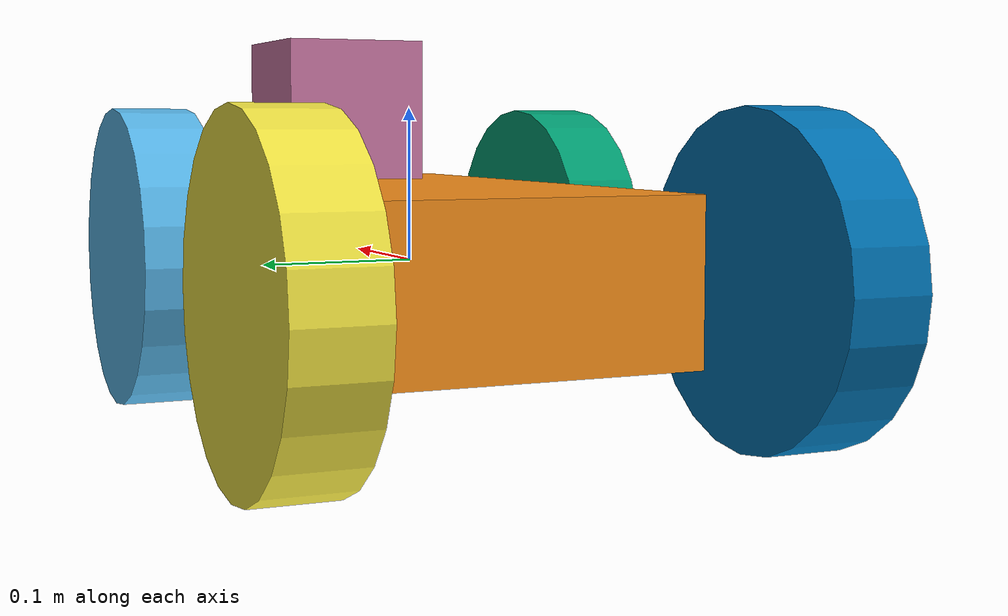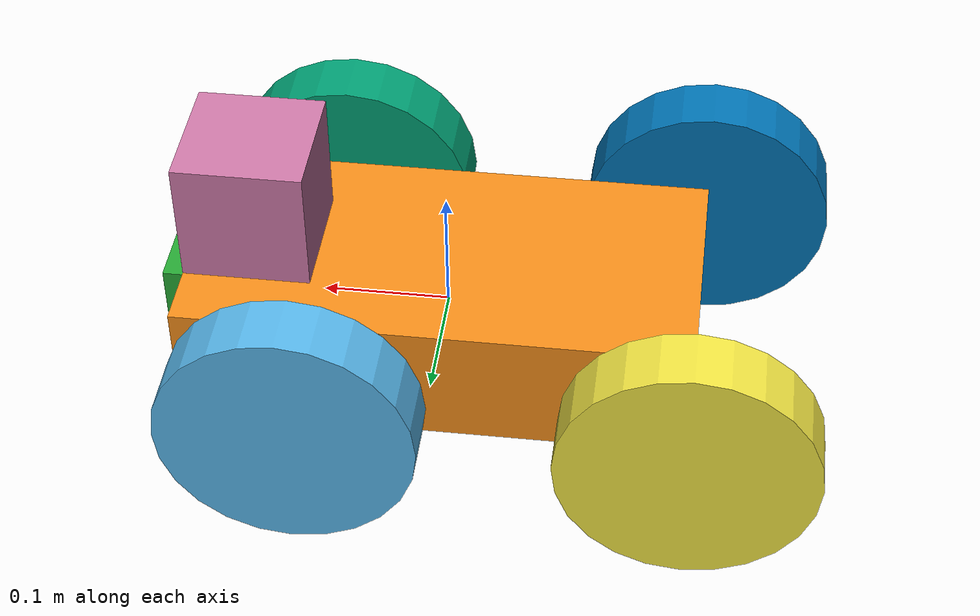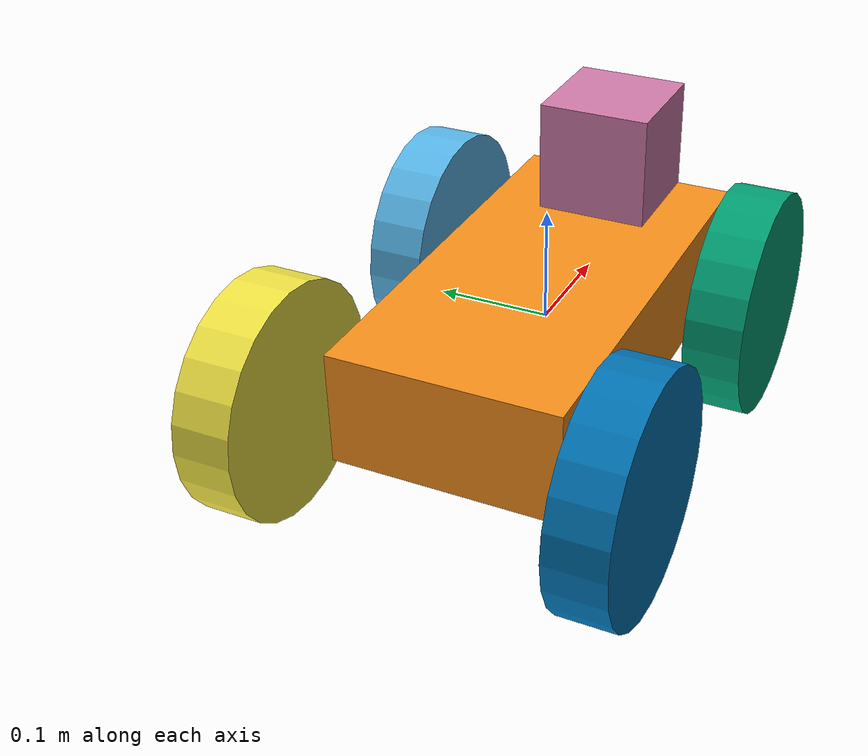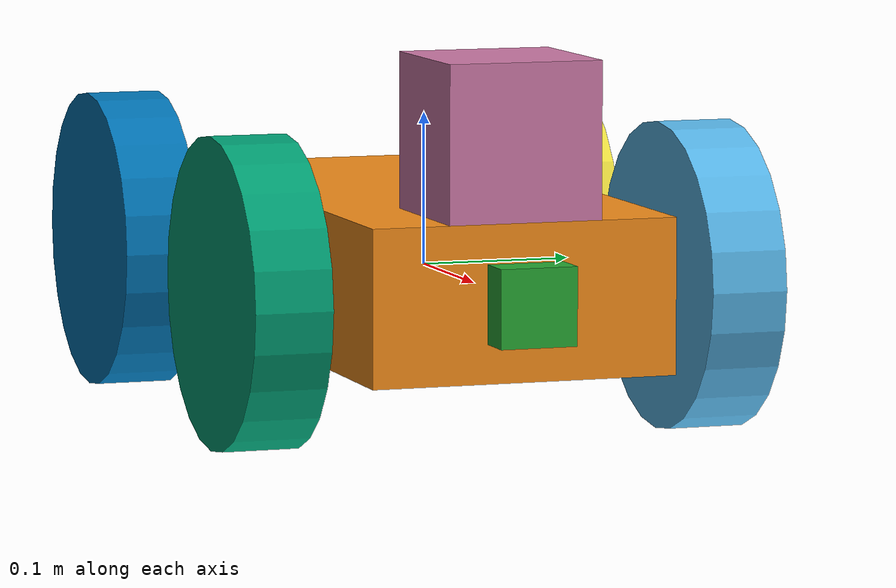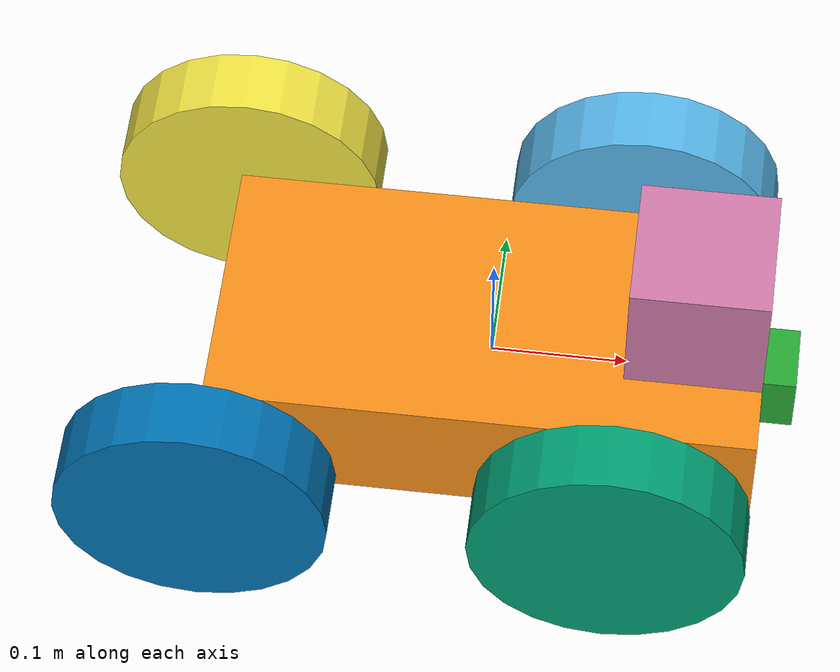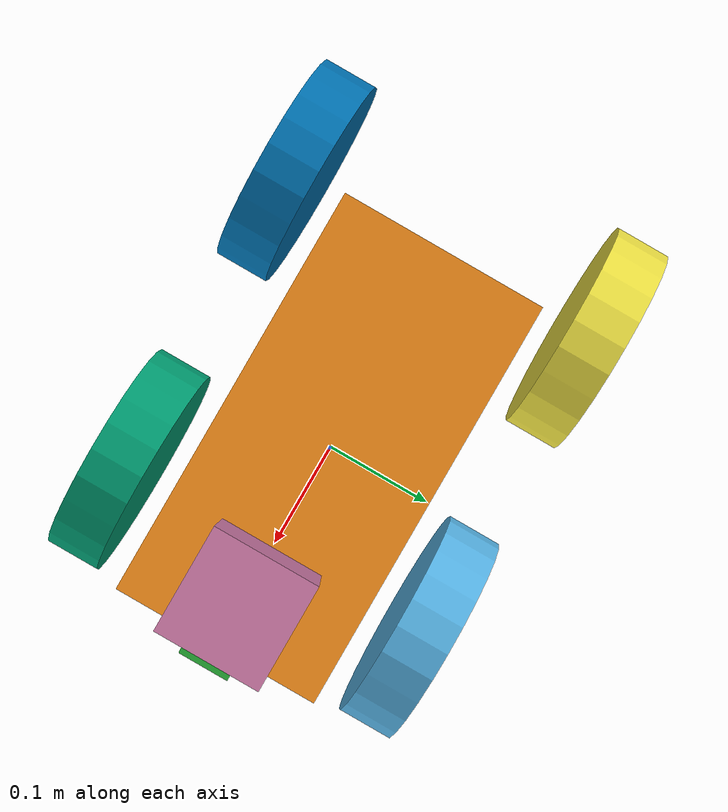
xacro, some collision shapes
<?xml version='1.0'?>

<robot name="myrobot" xmlns:xacro="http://www.ros.org/wiki/xacro">

  <xacro:property name="cameraSize" value="0.05"/>
  <xacro:property name="cameraMass" value="0.1"/>

  <xacro:include filename="$(find mybot_description)/urdf/mybot.gazebo" />
  <xacro:include filename="$(find mybot_description)/urdf/materials.xacro" />
  <xacro:include filename="$(find mybot_description)/urdf/macros.xacro" />

  <link name='chassis'>
    <pose>0 0 0.1 0 0 0</pose>

    <inertial>
      <mass value="10.0"/>
      <origin xyz="0.0 0 0.1" rpy=" 0 0 0"/>
      <inertia
          ixx="0.5" ixy="0" ixz="0"
          iyy="1.0" iyz="0"
          izz="0.1"
      />
    </inertial>

    <collision name='collision'>
      <geometry>
        <box size=".4 .2 .1"/>
      </geometry>
    </collision>

    <visual name='chassis_visual'>
      <origin xyz="0 0 0" rpy=" 0 0 0"/>
      <geometry>
        <box size=".4 .2 .1"/>
      </geometry>
    </visual>

  </link>

  <link name="left_wheel">
    <!--origin xyz="0.1 0.13 0.1" rpy="0 1.5707 1.5707"/-->
    <collision name="collision">
      <origin xyz="0 0 0" rpy="0 1.5707 1.5707"/>
      <geometry>
        <cylinder radius="0.1" length="0.05"/>
      </geometry>
    </collision>
    <visual name="left_wheel_visual">
      <origin xyz="0 0 0" rpy="0 1.5707 1.5707"/>
      <geometry>
        <cylinder radius="0.1" length="0.05"/>
      </geometry>
    </visual>
    <inertial>
      <origin xyz="0 0 0" rpy="0 1.5707 1.5707"/>
      <mass value="5"/>
      <cylinder_inertia m="5" r="0.1" h="0.05"/>
      <inertia
        ixx="1.0" ixy="0.0" ixz="0.0"
        iyy="1.0" iyz="0.0"
        izz="1.0"/>
    </inertial>
  </link>

  <link name="right_wheel">
    <!--origin xyz="0.1 -0.13 0.1" rpy="0 1.5707 1.5707"/-->
    <collision name="collision">
      <origin xyz="0 0 0" rpy="0 1.5707 1.5707"/>
      <geometry>
        <cylinder radius="0.1" length="0.05"/>
      </geometry>
    </collision>
    <visual name="right_wheel_visual">
      <origin xyz="0 0 0" rpy="0 1.5707 1.5707"/>
      <geometry>
        <cylinder radius="0.1" length="0.05"/>
      </geometry>
    </visual>
    <inertial>
      <origin xyz="0 0 0" rpy="0 1.5707 1.5707"/>
      <mass value="5"/>
      <cylinder_inertia m="5" r="0.1" h="0.05"/>
      <inertia
        ixx="1.0" ixy="0.0" ixz="0.0"
        iyy="1.0" iyz="0.0"
        izz="1.0"/>
    </inertial>
  </link>

   <link name="left_wheel_front">
    <!--origin xyz="0.1 -0.13 0.1" rpy="0 1.5707 1.5707"/-->
    <collision name="collision">
      <origin xyz="0 0 0" rpy="0 1.5707 1.5707"/>
      <geometry>
        <cylinder radius="0.1" length="0.05"/>
      </geometry>
    </collision>
    <visual name="left_wheel_front_visual">
      <origin xyz="0.0 0.0 0" rpy="0 1.5707 1.5707"/>
      <geometry>
        <cylinder radius="0.1" length="0.05"/>
      </geometry>
    </visual>
    <inertial>
      <origin xyz="0.0 0.0 0" rpy="0 1.5707 1.5707"/>
      <mass value="5"/>
      <cylinder_inertia m="5" r="0.1" h="0.05"/>
      <inertia
        ixx="1.0" ixy="0.0" ixz="0.0"
        iyy="1.0" iyz="0.0"
        izz="1.0"/>
    </inertial>
  </link>

  <link name="right_wheel_front">
    <!--origin xyz="0.1 -0.13 0.1" rpy="0 1.5707 1.5707"/-->
    <collision name="collision">
      <origin xyz="0 0 0" rpy="0 1.5707 1.5707"/>
      <geometry>
        <cylinder radius="0.1" length="0.05"/>
      </geometry>
    </collision>
    <visual name="right_wheel_front_visual">
      <origin xyz="0.0 0.0 0" rpy="0 1.5707 1.5707"/>
      <geometry>
        <cylinder radius="0.1" length="0.05"/>
      </geometry>
    </visual>
    <inertial>
      <origin xyz="0.0 0.0 0" rpy="0 1.5707 1.5707"/>
      <mass value="5"/>
      <cylinder_inertia m="5" r="0.1" h="0.05"/>
      <inertia
        ixx="1.0" ixy="0.0" ixz="0.0"
        iyy="1.0" iyz="0.0"
        izz="1.0"/>
    </inertial>
  </link>

  <joint type="continuous" name="left_wheel_hinge">
    <origin xyz="0.1 0.15 0" rpy="0 0 0"/>
    <child link="left_wheel"/>
    <parent link="chassis"/>
    <axis xyz="0 1 0" rpy="0 0 0"/>
    <limit effort="100" velocity="100"/>
    <joint_properties damping="0.0" friction="0.0"/>
  </joint>

  <joint type="continuous" name="right_wheel_hinge">
    <origin xyz="0.1 -0.15 0" rpy="0 0 0"/>
    <child link="right_wheel"/>
    <parent link="chassis"/>
    <axis xyz="0 1 0" rpy="0 0 0"/>
    <limit effort="100" velocity="100"/>
    <joint_properties damping="0.0" friction="0.0"/>
  </joint>

   <joint type="continuous" name="right_wheel_front_hinge">
    <origin xyz="-0.2 -0.15 0" rpy="0 0 0"/>
    <child link="right_wheel_front"/>
    <parent link="chassis"/>
    <axis xyz="0 1 0" rpy="0 0 0"/>
    <limit effort="100" velocity="100"/>
    <joint_properties damping="0.0" friction="0.0"/>
  </joint>

 <joint type="continuous" name="left_wheel_front_hinge">
    <origin xyz="-0.2 0.15 0" rpy="0 0 0"/>
    <child link="left_wheel_front"/>
    <parent link="chassis"/>
    <axis xyz="0 1 0" rpy="0 0 0"/>
    <limit effort="100" velocity="100"/>
    <joint_properties damping="0.0" friction="0.0"/>
  </joint>

 <link name="camera">
    <collision>
      <origin xyz="0 0 0" rpy="0 0 0"/>
      <geometry>
        <box size="${cameraSize} ${cameraSize} ${cameraSize}"/>
      </geometry>
    </collision>

    <visual>
      <origin xyz="0 0 0" rpy="0 0 0"/>
      <geometry>
        <box size="${cameraSize} ${cameraSize} ${cameraSize}"/>
      </geometry>
      <material name="green"/>
    </visual>

    <inertial>
      <mass value="${cameraMass}" />
      <origin xyz="0 0 0" rpy="0 0 0"/>
      <box_inertia m="${cameraMass}" x="${cameraSize}" y="${cameraSize}" z="${cameraSize}" />
      <inertia ixx="1e-6" ixy="0" ixz="0" iyy="1e-6" iyz="0" izz="1e-6" />
    </inertial>
  </link>

  <joint name="camera_joint" type="fixed">
    <axis xyz="0 1 0" />
    <origin xyz=".2 0 0" rpy="0 0 0"/>
    <parent link="chassis"/>
    <child link="camera"/>
  </joint>

<joint name="hokuyo_joint" type="fixed">
    <axis xyz="0 1 0" />
    <origin xyz=".15 0 .1" rpy="0 0 0"/>
    <parent link="chassis"/>
    <child link="hokuyo"/>
  </joint>

  <!-- Hokuyo Laser -->
  <link name="hokuyo">
    <collision>
      <origin xyz="0 0 0" rpy="0 0 0"/>
      <geometry>
    <box size="0.1 0.1 0.1"/>
      </geometry>
    </collision>

    <visual>
      <origin xyz="0 0 0" rpy="0 0 0"/>
      <geometry>
        <mesh filename="package://mybot_description/meshes/hokuyo.dae"/>
      </geometry>
    </visual>

    <inertial>
      <mass value="1e-5" />
      <origin xyz="0 0 0" rpy="0 0 0"/>
      <inertia ixx="1e-6" ixy="0" ixz="0" iyy="1e-6" iyz="0" izz="1e-6" />
    </inertial>
  </link>

</robot>
